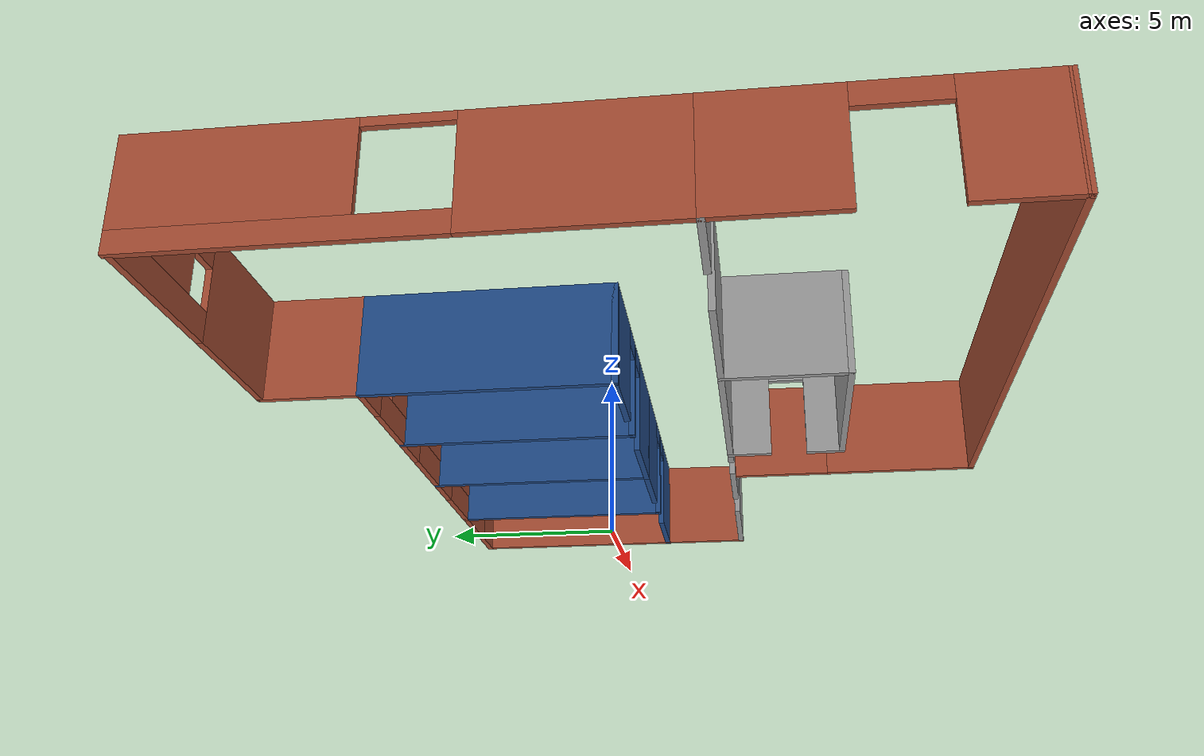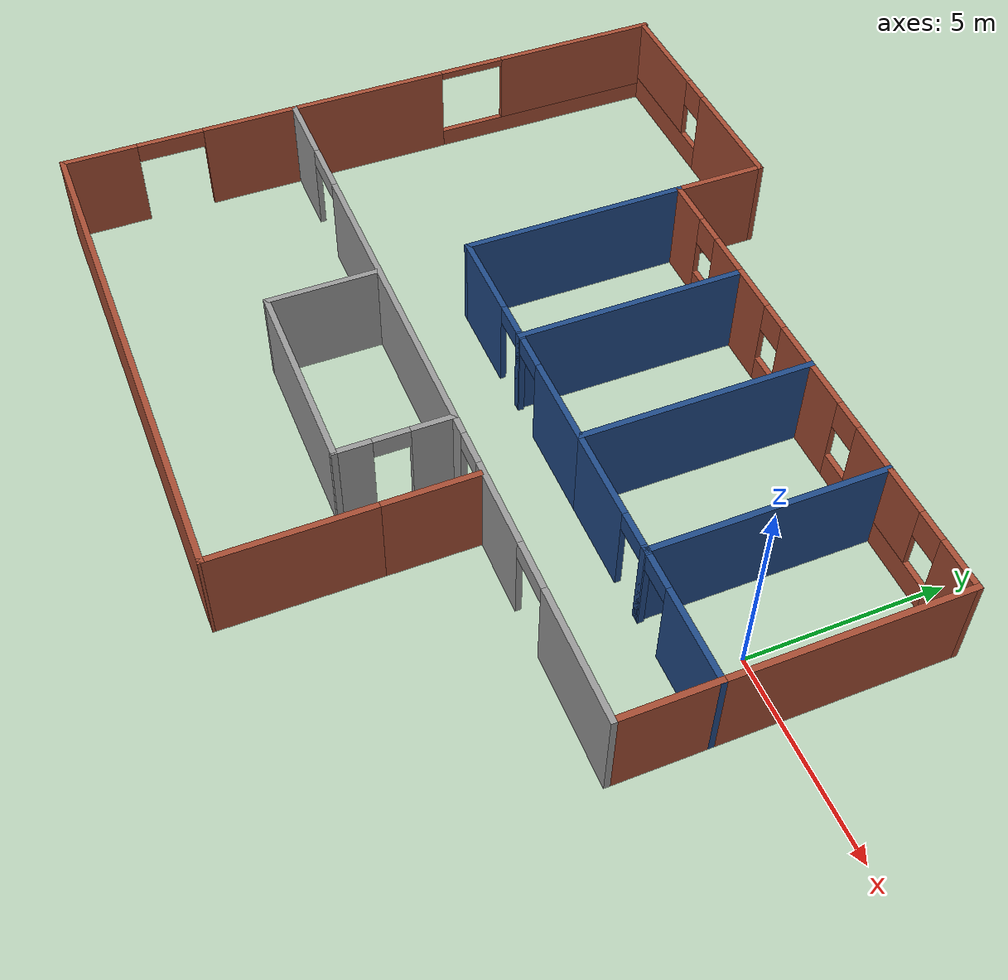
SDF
<?xml version='1.0'?>
<sdf version='1.6'>
  <model name='Building'>
    <pose>-8.62513 -1.85512 0 0 -0 0</pose>
    <link name='Wall_10'>
      <pose>8.50013 0.225124 0 0 -0 0</pose>
      <visual name='Wall_10_Visual_0'>
        <pose>-1.64755 0 1.25 0 -0 0</pose>
        <geometry>
          <box>
            <size>0.204911 0.15 2.5</size>
          </box>
        </geometry>
        <material>
          <script>
            <uri>file://media/materials/scripts/gazebo.material</uri>
            <name>Gazebo/Grey</name>
          </script>
          <ambient>0.12549 0.290196 0.529412 1</ambient>
        </material>
        <meta>
          <layer>0</layer>
        </meta>
      </visual>
      <collision name='Wall_10_Collision_0'>
        <geometry>
          <box>
            <size>0.204911 0.15 2.5</size>
          </box>
        </geometry>
        <pose>-1.64755 0 1.25 0 -0 0</pose>
      </collision>
      <visual name='Wall_10_Visual_1'>
        <pose>0.552455 0 1.25 0 -0 0</pose>
        <geometry>
          <box>
            <size>2.39509 0.15 2.5</size>
          </box>
        </geometry>
        <material>
          <script>
            <uri>file://media/materials/scripts/gazebo.material</uri>
            <name>Gazebo/Grey</name>
          </script>
          <ambient>0.12549 0.290196 0.529412 1</ambient>
        </material>
        <meta>
          <layer>0</layer>
        </meta>
      </visual>
      <collision name='Wall_10_Collision_1'>
        <geometry>
          <box>
            <size>2.39509 0.15 2.5</size>
          </box>
        </geometry>
        <pose>0.552455 0 1.25 0 -0 0</pose>
      </collision>
      <visual name='Wall_10_Visual_2'>
        <pose>-1.09509 0 2.25 0 -0 0</pose>
        <geometry>
          <box>
            <size>0.9 0.15 0.5</size>
          </box>
        </geometry>
        <material>
          <script>
            <uri>file://media/materials/scripts/gazebo.material</uri>
            <name>Gazebo/Grey</name>
          </script>
          <ambient>0.12549 0.290196 0.529412 1</ambient>
        </material>
        <meta>
          <layer>0</layer>
        </meta>
      </visual>
      <collision name='Wall_10_Collision_2'>
        <geometry>
          <box>
            <size>0.9 0.15 0.5</size>
          </box>
        </geometry>
        <pose>-1.09509 0 2.25 0 -0 0</pose>
      </collision>
    </link>
    <link name='Wall_12'>
      <pose>5.15013 0.225124 0 0 -0 3.14159</pose>
      <visual name='Wall_12_Visual_0'>
        <pose>-1.64576 0 1.25 0 -0 0</pose>
        <geometry>
          <box>
            <size>0.208483 0.15 2.5</size>
          </box>
        </geometry>
        <material>
          <script>
            <uri>file://media/materials/scripts/gazebo.material</uri>
            <name>Gazebo/Grey</name>
          </script>
          <ambient>0.12549 0.290196 0.529412 1</ambient>
        </material>
        <meta>
          <layer>0</layer>
        </meta>
      </visual>
      <collision name='Wall_12_Collision_0'>
        <geometry>
          <box>
            <size>0.208483 0.15 2.5</size>
          </box>
        </geometry>
        <pose>-1.64576 0 1.25 0 -0 0</pose>
      </collision>
      <visual name='Wall_12_Visual_1'>
        <pose>0.554241 0 1.25 0 -0 0</pose>
        <geometry>
          <box>
            <size>2.39152 0.15 2.5</size>
          </box>
        </geometry>
        <material>
          <script>
            <uri>file://media/materials/scripts/gazebo.material</uri>
            <name>Gazebo/Grey</name>
          </script>
          <ambient>0.12549 0.290196 0.529412 1</ambient>
        </material>
        <meta>
          <layer>0</layer>
        </meta>
      </visual>
      <collision name='Wall_12_Collision_1'>
        <geometry>
          <box>
            <size>2.39152 0.15 2.5</size>
          </box>
        </geometry>
        <pose>0.554241 0 1.25 0 -0 0</pose>
      </collision>
      <visual name='Wall_12_Visual_2'>
        <pose>-1.09152 0 2.25 0 -0 0</pose>
        <geometry>
          <box>
            <size>0.9 0.15 0.5</size>
          </box>
        </geometry>
        <material>
          <script>
            <uri>file://media/materials/scripts/gazebo.material</uri>
            <name>Gazebo/Grey</name>
          </script>
          <ambient>0.12549 0.290196 0.529412 1</ambient>
        </material>
        <meta>
          <layer>0</layer>
        </meta>
      </visual>
      <collision name='Wall_12_Collision_2'>
        <geometry>
          <box>
            <size>0.9 0.15 0.5</size>
          </box>
        </geometry>
        <pose>-1.09152 0 2.25 0 -0 0</pose>
      </collision>
    </link>
    <link name='Wall_13'>
      <collision name='Wall_13_Collision'>
        <geometry>
          <box>
            <size>6 0.15 2.5</size>
          </box>
        </geometry>
        <pose>0 0 1.25 0 -0 0</pose>
      </collision>
      <visual name='Wall_13_Visual'>
        <pose>0 0 1.25 0 -0 0</pose>
        <geometry>
          <box>
            <size>6 0.15 2.5</size>
          </box>
        </geometry>
        <material>
          <script>
            <uri>file://media/materials/scripts/gazebo.material</uri>
            <name>Gazebo/Grey</name>
          </script>
          <ambient>0.12549 0.290196 0.529412 1</ambient>
        </material>
        <meta>
          <layer>0</layer>
        </meta>
      </visual>
      <pose>3.47512 3.15012 0 0 -0 1.5708</pose>
    </link>
    <link name='Wall_14'>
      <pose>5.15013 6.07512 0 0 -0 0</pose>
      <visual name='Wall_14_Visual_0'>
        <pose>-1.06914 0 1.25 0 -0 0</pose>
        <geometry>
          <box>
            <size>1.36172 0.15 2.5</size>
          </box>
        </geometry>
        <material>
          <script>
            <uri>file://media/materials/scripts/gazebo.material</uri>
            <name>Gazebo/Bricks</name>
          </script>
          <ambient>0.333333 0.341176 0.32549 1</ambient>
        </material>
        <meta>
          <layer>0</layer>
        </meta>
      </visual>
      <collision name='Wall_14_Collision_0'>
        <geometry>
          <box>
            <size>1.36172 0.15 2.5</size>
          </box>
        </geometry>
        <pose>-1.06914 0 1.25 0 -0 0</pose>
      </collision>
      <visual name='Wall_14_Visual_1'>
        <pose>0.68086 0 0.35 0 -0 0</pose>
        <geometry>
          <box>
            <size>2.13828 0.15 0.7</size>
          </box>
        </geometry>
        <material>
          <script>
            <uri>file://media/materials/scripts/gazebo.material</uri>
            <name>Gazebo/Bricks</name>
          </script>
          <ambient>0.333333 0.341176 0.32549 1</ambient>
        </material>
        <meta>
          <layer>0</layer>
        </meta>
      </visual>
      <collision name='Wall_14_Collision_1'>
        <geometry>
          <box>
            <size>2.13828 0.15 0.7</size>
          </box>
        </geometry>
        <pose>0.68086 0 0.35 0 -0 0</pose>
      </collision>
      <visual name='Wall_14_Visual_2'>
        <pose>1.08086 0 1.6 0 -0 0</pose>
        <geometry>
          <box>
            <size>1.33828 0.15 1.8</size>
          </box>
        </geometry>
        <material>
          <script>
            <uri>file://media/materials/scripts/gazebo.material</uri>
            <name>Gazebo/Bricks</name>
          </script>
          <ambient>0.333333 0.341176 0.32549 1</ambient>
        </material>
        <meta>
          <layer>0</layer>
        </meta>
      </visual>
      <collision name='Wall_14_Collision_2'>
        <geometry>
          <box>
            <size>1.33828 0.15 1.8</size>
          </box>
        </geometry>
        <pose>1.08086 0 1.6 0 -0 0</pose>
      </collision>
      <visual name='Wall_14_Visual_3'>
        <pose>0.01172 0 2.1 0 -0 0</pose>
        <geometry>
          <box>
            <size>0.8 0.15 0.8</size>
          </box>
        </geometry>
        <material>
          <script>
            <uri>file://media/materials/scripts/gazebo.material</uri>
            <name>Gazebo/Bricks</name>
          </script>
          <ambient>0.333333 0.341176 0.32549 1</ambient>
        </material>
        <meta>
          <layer>0</layer>
        </meta>
      </visual>
      <collision name='Wall_14_Collision_3'>
        <geometry>
          <box>
            <size>0.8 0.15 0.8</size>
          </box>
        </geometry>
        <pose>0.01172 0 2.1 0 -0 0</pose>
      </collision>
    </link>
    <link name='Wall_16'>
      <pose>1.80012 0.225124 0 0 -0 3.14159</pose>
      <visual name='Wall_16_Visual_0'>
        <pose>-0.551484 0 1.25 0 -0 0</pose>
        <geometry>
          <box>
            <size>2.39703 0.15 2.5</size>
          </box>
        </geometry>
        <material>
          <script>
            <uri>file://media/materials/scripts/gazebo.material</uri>
            <name>Gazebo/Grey</name>
          </script>
          <ambient>0.12549 0.290196 0.529412 1</ambient>
        </material>
        <meta>
          <layer>0</layer>
        </meta>
      </visual>
      <collision name='Wall_16_Collision_0'>
        <geometry>
          <box>
            <size>2.39703 0.15 2.5</size>
          </box>
        </geometry>
        <pose>-0.551484 0 1.25 0 -0 0</pose>
      </collision>
      <visual name='Wall_16_Visual_1'>
        <pose>1.64852 0 1.25 0 -0 0</pose>
        <geometry>
          <box>
            <size>0.202968 0.15 2.5</size>
          </box>
        </geometry>
        <material>
          <script>
            <uri>file://media/materials/scripts/gazebo.material</uri>
            <name>Gazebo/Grey</name>
          </script>
          <ambient>0.12549 0.290196 0.529412 1</ambient>
        </material>
        <meta>
          <layer>0</layer>
        </meta>
      </visual>
      <collision name='Wall_16_Collision_1'>
        <geometry>
          <box>
            <size>0.202968 0.15 2.5</size>
          </box>
        </geometry>
        <pose>1.64852 0 1.25 0 -0 0</pose>
      </collision>
      <visual name='Wall_16_Visual_2'>
        <pose>1.09703 0 2.25 0 -0 0</pose>
        <geometry>
          <box>
            <size>0.9 0.15 0.5</size>
          </box>
        </geometry>
        <material>
          <script>
            <uri>file://media/materials/scripts/gazebo.material</uri>
            <name>Gazebo/Grey</name>
          </script>
          <ambient>0.12549 0.290196 0.529412 1</ambient>
        </material>
        <meta>
          <layer>0</layer>
        </meta>
      </visual>
      <collision name='Wall_16_Collision_2'>
        <geometry>
          <box>
            <size>0.9 0.15 0.5</size>
          </box>
        </geometry>
        <pose>1.09703 0 2.25 0 -0 0</pose>
      </collision>
    </link>
    <link name='Wall_17'>
      <collision name='Wall_17_Collision'>
        <geometry>
          <box>
            <size>6 0.15 2.5</size>
          </box>
        </geometry>
        <pose>0 0 1.25 0 -0 0</pose>
      </collision>
      <visual name='Wall_17_Visual'>
        <pose>0 0 1.25 0 -0 0</pose>
        <geometry>
          <box>
            <size>6 0.15 2.5</size>
          </box>
        </geometry>
        <material>
          <script>
            <uri>file://media/materials/scripts/gazebo.material</uri>
            <name>Gazebo/Grey</name>
          </script>
          <ambient>0.12549 0.290196 0.529412 1</ambient>
        </material>
        <meta>
          <layer>0</layer>
        </meta>
      </visual>
      <pose>0.125125 3.15012 0 0 -0 1.5708</pose>
    </link>
    <link name='Wall_18'>
      <pose>1.80012 6.07512 0 0 -0 0</pose>
      <visual name='Wall_18_Visual_0'>
        <pose>-1.07428 0 1.25 0 -0 0</pose>
        <geometry>
          <box>
            <size>1.35145 0.15 2.5</size>
          </box>
        </geometry>
        <material>
          <script>
            <uri>file://media/materials/scripts/gazebo.material</uri>
            <name>Gazebo/Bricks</name>
          </script>
          <ambient>0.333333 0.341176 0.32549 1</ambient>
        </material>
        <meta>
          <layer>0</layer>
        </meta>
      </visual>
      <collision name='Wall_18_Collision_0'>
        <geometry>
          <box>
            <size>1.35145 0.15 2.5</size>
          </box>
        </geometry>
        <pose>-1.07428 0 1.25 0 -0 0</pose>
      </collision>
      <visual name='Wall_18_Visual_1'>
        <pose>0.675722 0 0.35 0 -0 0</pose>
        <geometry>
          <box>
            <size>2.14855 0.15 0.7</size>
          </box>
        </geometry>
        <material>
          <script>
            <uri>file://media/materials/scripts/gazebo.material</uri>
            <name>Gazebo/Bricks</name>
          </script>
          <ambient>0.333333 0.341176 0.32549 1</ambient>
        </material>
        <meta>
          <layer>0</layer>
        </meta>
      </visual>
      <collision name='Wall_18_Collision_1'>
        <geometry>
          <box>
            <size>2.14855 0.15 0.7</size>
          </box>
        </geometry>
        <pose>0.675722 0 0.35 0 -0 0</pose>
      </collision>
      <visual name='Wall_18_Visual_2'>
        <pose>1.07572 0 1.6 0 -0 0</pose>
        <geometry>
          <box>
            <size>1.34855 0.15 1.8</size>
          </box>
        </geometry>
        <material>
          <script>
            <uri>file://media/materials/scripts/gazebo.material</uri>
            <name>Gazebo/Bricks</name>
          </script>
          <ambient>0.333333 0.341176 0.32549 1</ambient>
        </material>
        <meta>
          <layer>0</layer>
        </meta>
      </visual>
      <collision name='Wall_18_Collision_2'>
        <geometry>
          <box>
            <size>1.34855 0.15 1.8</size>
          </box>
        </geometry>
        <pose>1.07572 0 1.6 0 -0 0</pose>
      </collision>
      <visual name='Wall_18_Visual_3'>
        <pose>0.001445 0 2.1 0 -0 0</pose>
        <geometry>
          <box>
            <size>0.8 0.15 0.8</size>
          </box>
        </geometry>
        <material>
          <script>
            <uri>file://media/materials/scripts/gazebo.material</uri>
            <name>Gazebo/Bricks</name>
          </script>
          <ambient>0.333333 0.341176 0.32549 1</ambient>
        </material>
        <meta>
          <layer>0</layer>
        </meta>
      </visual>
      <collision name='Wall_18_Collision_3'>
        <geometry>
          <box>
            <size>0.8 0.15 0.8</size>
          </box>
        </geometry>
        <pose>0.001445 0 2.1 0 -0 0</pose>
      </collision>
    </link>
    <link name='Wall_20'>
      <pose>-1.54987 0.225124 0 0 -0 3.14159</pose>
      <visual name='Wall_20_Visual_0'>
        <pose>-1.64976 0 1.25 0 -0 0</pose>
        <geometry>
          <box>
            <size>0.200481 0.15 2.5</size>
          </box>
        </geometry>
        <material>
          <script>
            <uri>file://media/materials/scripts/gazebo.material</uri>
            <name>Gazebo/Grey</name>
          </script>
          <ambient>0.12549 0.290196 0.529412 1</ambient>
        </material>
        <meta>
          <layer>0</layer>
        </meta>
      </visual>
      <collision name='Wall_20_Collision_0'>
        <geometry>
          <box>
            <size>0.200481 0.15 2.5</size>
          </box>
        </geometry>
        <pose>-1.64976 0 1.25 0 -0 0</pose>
      </collision>
      <visual name='Wall_20_Visual_1'>
        <pose>0.550241 0 1.25 0 -0 0</pose>
        <geometry>
          <box>
            <size>2.39952 0.15 2.5</size>
          </box>
        </geometry>
        <material>
          <script>
            <uri>file://media/materials/scripts/gazebo.material</uri>
            <name>Gazebo/Grey</name>
          </script>
          <ambient>0.12549 0.290196 0.529412 1</ambient>
        </material>
        <meta>
          <layer>0</layer>
        </meta>
      </visual>
      <collision name='Wall_20_Collision_1'>
        <geometry>
          <box>
            <size>2.39952 0.15 2.5</size>
          </box>
        </geometry>
        <pose>0.550241 0 1.25 0 -0 0</pose>
      </collision>
      <visual name='Wall_20_Visual_2'>
        <pose>-1.09952 0 2.25 0 -0 0</pose>
        <geometry>
          <box>
            <size>0.9 0.15 0.5</size>
          </box>
        </geometry>
        <material>
          <script>
            <uri>file://media/materials/scripts/gazebo.material</uri>
            <name>Gazebo/Grey</name>
          </script>
          <ambient>0.12549 0.290196 0.529412 1</ambient>
        </material>
        <meta>
          <layer>0</layer>
        </meta>
      </visual>
      <collision name='Wall_20_Collision_2'>
        <geometry>
          <box>
            <size>0.9 0.15 0.5</size>
          </box>
        </geometry>
        <pose>-1.09952 0 2.25 0 -0 0</pose>
      </collision>
    </link>
    <link name='Wall_21'>
      <collision name='Wall_21_Collision'>
        <geometry>
          <box>
            <size>6 0.15 2.5</size>
          </box>
        </geometry>
        <pose>0 0 1.25 0 -0 0</pose>
      </collision>
      <visual name='Wall_21_Visual'>
        <pose>0 0 1.25 0 -0 0</pose>
        <geometry>
          <box>
            <size>6 0.15 2.5</size>
          </box>
        </geometry>
        <material>
          <script>
            <uri>file://media/materials/scripts/gazebo.material</uri>
            <name>Gazebo/Grey</name>
          </script>
          <ambient>0.12549 0.290196 0.529412 1</ambient>
        </material>
        <meta>
          <layer>0</layer>
        </meta>
      </visual>
      <pose>-3.22488 3.15012 0 0 -0 1.5708</pose>
    </link>
    <link name='Wall_22'>
      <pose>-1.54987 6.07512 0 0 -0 0</pose>
      <visual name='Wall_22_Visual_0'>
        <pose>-1.07723 0 1.25 0 -0 0</pose>
        <geometry>
          <box>
            <size>1.34554 0.15 2.5</size>
          </box>
        </geometry>
        <material>
          <script>
            <uri>file://media/materials/scripts/gazebo.material</uri>
            <name>Gazebo/Bricks</name>
          </script>
          <ambient>0.333333 0.341176 0.32549 1</ambient>
        </material>
        <meta>
          <layer>0</layer>
        </meta>
      </visual>
      <collision name='Wall_22_Collision_0'>
        <geometry>
          <box>
            <size>1.34554 0.15 2.5</size>
          </box>
        </geometry>
        <pose>-1.07723 0 1.25 0 -0 0</pose>
      </collision>
      <visual name='Wall_22_Visual_1'>
        <pose>0.672768 0 0.35 0 -0 0</pose>
        <geometry>
          <box>
            <size>2.15446 0.15 0.7</size>
          </box>
        </geometry>
        <material>
          <script>
            <uri>file://media/materials/scripts/gazebo.material</uri>
            <name>Gazebo/Bricks</name>
          </script>
          <ambient>0.333333 0.341176 0.32549 1</ambient>
        </material>
        <meta>
          <layer>0</layer>
        </meta>
      </visual>
      <collision name='Wall_22_Collision_1'>
        <geometry>
          <box>
            <size>2.15446 0.15 0.7</size>
          </box>
        </geometry>
        <pose>0.672768 0 0.35 0 -0 0</pose>
      </collision>
      <visual name='Wall_22_Visual_2'>
        <pose>1.07277 0 1.6 0 -0 0</pose>
        <geometry>
          <box>
            <size>1.35446 0.15 1.8</size>
          </box>
        </geometry>
        <material>
          <script>
            <uri>file://media/materials/scripts/gazebo.material</uri>
            <name>Gazebo/Bricks</name>
          </script>
          <ambient>0.333333 0.341176 0.32549 1</ambient>
        </material>
        <meta>
          <layer>0</layer>
        </meta>
      </visual>
      <collision name='Wall_22_Collision_2'>
        <geometry>
          <box>
            <size>1.35446 0.15 1.8</size>
          </box>
        </geometry>
        <pose>1.07277 0 1.6 0 -0 0</pose>
      </collision>
      <visual name='Wall_22_Visual_3'>
        <pose>-0.004464 0 2.1 0 -0 0</pose>
        <geometry>
          <box>
            <size>0.8 0.15 0.8</size>
          </box>
        </geometry>
        <material>
          <script>
            <uri>file://media/materials/scripts/gazebo.material</uri>
            <name>Gazebo/Bricks</name>
          </script>
          <ambient>0.333333 0.341176 0.32549 1</ambient>
        </material>
        <meta>
          <layer>0</layer>
        </meta>
      </visual>
      <collision name='Wall_22_Collision_3'>
        <geometry>
          <box>
            <size>0.8 0.15 0.8</size>
          </box>
        </geometry>
        <pose>-0.004464 0 2.1 0 -0 0</pose>
      </collision>
    </link>
    <link name='Wall_24'>
      <collision name='Wall_24_Collision'>
        <geometry>
          <box>
            <size>2.5 0.15 2.5</size>
          </box>
        </geometry>
        <pose>0 0 1.25 0 -0 0</pose>
      </collision>
      <visual name='Wall_24_Visual'>
        <pose>0 0 1.25 0 -0 0</pose>
        <geometry>
          <box>
            <size>2.5 0.15 2.5</size>
          </box>
        </geometry>
        <material>
          <script>
            <uri>file://media/materials/scripts/gazebo.material</uri>
            <name>Gazebo/Bricks</name>
          </script>
          <ambient>1 1 1 1</ambient>
        </material>
        <meta>
          <layer>0</layer>
        </meta>
      </visual>
      <pose>-3.22488 7.25012 0 0 -0 1.5708</pose>
    </link>
    <link name='Wall_25'>
      <pose>-6.64987 8.42512 0 0 -0 3.14159</pose>
      <visual name='Wall_25_Visual_0'>
        <pose>-1.84714 0 1.25 0 -0 0</pose>
        <geometry>
          <box>
            <size>3.30572 0.15 2.5</size>
          </box>
        </geometry>
        <material>
          <script>
            <uri>file://media/materials/scripts/gazebo.material</uri>
            <name>Gazebo/Bricks</name>
          </script>
          <ambient>0.333333 0.341176 0.32549 1</ambient>
        </material>
        <meta>
          <layer>0</layer>
        </meta>
      </visual>
      <collision name='Wall_25_Collision_0'>
        <geometry>
          <box>
            <size>3.30572 0.15 2.5</size>
          </box>
        </geometry>
        <pose>-1.84714 0 1.25 0 -0 0</pose>
      </collision>
      <visual name='Wall_25_Visual_1'>
        <pose>1.65286 0 0.35 0 -0 0</pose>
        <geometry>
          <box>
            <size>3.69428 0.15 0.7</size>
          </box>
        </geometry>
        <material>
          <script>
            <uri>file://media/materials/scripts/gazebo.material</uri>
            <name>Gazebo/Bricks</name>
          </script>
          <ambient>0.333333 0.341176 0.32549 1</ambient>
        </material>
        <meta>
          <layer>0</layer>
        </meta>
      </visual>
      <collision name='Wall_25_Collision_1'>
        <geometry>
          <box>
            <size>3.69428 0.15 0.7</size>
          </box>
        </geometry>
        <pose>1.65286 0 0.35 0 -0 0</pose>
      </collision>
      <visual name='Wall_25_Visual_2'>
        <pose>2.05286 0 1.6 0 -0 0</pose>
        <geometry>
          <box>
            <size>2.89428 0.15 1.8</size>
          </box>
        </geometry>
        <material>
          <script>
            <uri>file://media/materials/scripts/gazebo.material</uri>
            <name>Gazebo/Bricks</name>
          </script>
          <ambient>0.333333 0.341176 0.32549 1</ambient>
        </material>
        <meta>
          <layer>0</layer>
        </meta>
      </visual>
      <collision name='Wall_25_Collision_2'>
        <geometry>
          <box>
            <size>2.89428 0.15 1.8</size>
          </box>
        </geometry>
        <pose>2.05286 0 1.6 0 -0 0</pose>
      </collision>
      <visual name='Wall_25_Visual_3'>
        <pose>0.205716 0 2.1 0 -0 0</pose>
        <geometry>
          <box>
            <size>0.8 0.15 0.8</size>
          </box>
        </geometry>
        <material>
          <script>
            <uri>file://media/materials/scripts/gazebo.material</uri>
            <name>Gazebo/Bricks</name>
          </script>
          <ambient>0.333333 0.341176 0.32549 1</ambient>
        </material>
        <meta>
          <layer>0</layer>
        </meta>
      </visual>
      <collision name='Wall_25_Collision_3'>
        <geometry>
          <box>
            <size>0.8 0.15 0.8</size>
          </box>
        </geometry>
        <pose>0.205716 0 2.1 0 -0 0</pose>
      </collision>
    </link>
    <link name='Wall_40'>
      <pose>0.000125 -2.12488 0 0 -0 3.14159</pose>
      <visual name='Wall_40_Visual_0'>
        <pose>-8.57984 0 1.25 0 -0 0</pose>
        <geometry>
          <box>
            <size>3.34032 0.15 2.5</size>
          </box>
        </geometry>
        <material>
          <script>
            <uri>file://media/materials/scripts/gazebo.material</uri>
            <name>Gazebo/Grey</name>
          </script>
          <ambient>0.533333 0.541176 0.521569 1</ambient>
        </material>
        <meta>
          <layer>0</layer>
        </meta>
      </visual>
      <collision name='Wall_40_Collision_0'>
        <geometry>
          <box>
            <size>3.34032 0.15 2.5</size>
          </box>
        </geometry>
        <pose>-8.57984 0 1.25 0 -0 0</pose>
      </collision>
      <visual name='Wall_40_Visual_1'>
        <pose>-4.49832 0 1.25 0 -0 0</pose>
        <geometry>
          <box>
            <size>2.32272 0.15 2.5</size>
          </box>
        </geometry>
        <material>
          <script>
            <uri>file://media/materials/scripts/gazebo.material</uri>
            <name>Gazebo/Grey</name>
          </script>
          <ambient>0.533333 0.541176 0.521569 1</ambient>
        </material>
        <meta>
          <layer>0</layer>
        </meta>
      </visual>
      <collision name='Wall_40_Collision_1'>
        <geometry>
          <box>
            <size>2.32272 0.15 2.5</size>
          </box>
        </geometry>
        <pose>-4.49832 0 1.25 0 -0 0</pose>
      </collision>
      <visual name='Wall_40_Visual_2'>
        <pose>2.13723 0 1.25 0 -0 0</pose>
        <geometry>
          <box>
            <size>9.14837 0.15 2.5</size>
          </box>
        </geometry>
        <material>
          <script>
            <uri>file://media/materials/scripts/gazebo.material</uri>
            <name>Gazebo/Grey</name>
          </script>
          <ambient>0.533333 0.541176 0.521569 1</ambient>
        </material>
        <meta>
          <layer>0</layer>
        </meta>
      </visual>
      <collision name='Wall_40_Collision_2'>
        <geometry>
          <box>
            <size>9.14837 0.15 2.5</size>
          </box>
        </geometry>
        <pose>2.13723 0 1.25 0 -0 0</pose>
      </collision>
      <visual name='Wall_40_Visual_3'>
        <pose>9.23071 0 1.25 0 -0 0</pose>
        <geometry>
          <box>
            <size>2.03859 0.15 2.5</size>
          </box>
        </geometry>
        <material>
          <script>
            <uri>file://media/materials/scripts/gazebo.material</uri>
            <name>Gazebo/Grey</name>
          </script>
          <ambient>0.533333 0.541176 0.521569 1</ambient>
        </material>
        <meta>
          <layer>0</layer>
        </meta>
      </visual>
      <collision name='Wall_40_Collision_3'>
        <geometry>
          <box>
            <size>2.03859 0.15 2.5</size>
          </box>
        </geometry>
        <pose>9.23071 0 1.25 0 -0 0</pose>
      </collision>
      <visual name='Wall_40_Visual_4'>
        <pose>-6.28468 0 2.25 0 -0 0</pose>
        <geometry>
          <box>
            <size>1.25 0.15 0.5</size>
          </box>
        </geometry>
        <material>
          <script>
            <uri>file://media/materials/scripts/gazebo.material</uri>
            <name>Gazebo/Grey</name>
          </script>
          <ambient>0.533333 0.541176 0.521569 1</ambient>
        </material>
        <meta>
          <layer>0</layer>
        </meta>
      </visual>
      <collision name='Wall_40_Collision_4'>
        <geometry>
          <box>
            <size>1.25 0.15 0.5</size>
          </box>
        </geometry>
        <pose>-6.28468 0 2.25 0 -0 0</pose>
      </collision>
      <visual name='Wall_40_Visual_5'>
        <pose>-2.88696 0 2.25 0 -0 0</pose>
        <geometry>
          <box>
            <size>0.9 0.15 0.5</size>
          </box>
        </geometry>
        <material>
          <script>
            <uri>file://media/materials/scripts/gazebo.material</uri>
            <name>Gazebo/Grey</name>
          </script>
          <ambient>0.533333 0.541176 0.521569 1</ambient>
        </material>
        <meta>
          <layer>0</layer>
        </meta>
      </visual>
      <collision name='Wall_40_Collision_5'>
        <geometry>
          <box>
            <size>0.9 0.15 0.5</size>
          </box>
        </geometry>
        <pose>-2.88696 0 2.25 0 -0 0</pose>
      </collision>
      <visual name='Wall_40_Visual_6'>
        <pose>7.46141 0 2.25 0 -0 0</pose>
        <geometry>
          <box>
            <size>1.5 0.15 0.5</size>
          </box>
        </geometry>
        <material>
          <script>
            <uri>file://media/materials/scripts/gazebo.material</uri>
            <name>Gazebo/Grey</name>
          </script>
          <ambient>0.533333 0.541176 0.521569 1</ambient>
        </material>
        <meta>
          <layer>0</layer>
        </meta>
      </visual>
      <collision name='Wall_40_Collision_6'>
        <geometry>
          <box>
            <size>1.5 0.15 0.5</size>
          </box>
        </geometry>
        <pose>7.46141 0 2.25 0 -0 0</pose>
      </collision>
    </link>
    <link name='Wall_41'>
      <pose>-10.1749 3.17512 0 0 -0 1.5708</pose>
      <visual name='Wall_41_Visual_0'>
        <pose>-3.19655 0 1.25 0 -0 0</pose>
        <geometry>
          <box>
            <size>4.3569 0.15 2.5</size>
          </box>
        </geometry>
        <material>
          <script>
            <uri>file://media/materials/scripts/gazebo.material</uri>
            <name>Gazebo/Bricks</name>
          </script>
          <ambient>0.333333 0.341176 0.32549 1</ambient>
        </material>
        <meta>
          <layer>0</layer>
        </meta>
      </visual>
      <collision name='Wall_41_Collision_0'>
        <geometry>
          <box>
            <size>4.3569 0.15 2.5</size>
          </box>
        </geometry>
        <pose>-3.19655 0 1.25 0 -0 0</pose>
      </collision>
      <visual name='Wall_41_Visual_1'>
        <pose>2.17845 0 0.25 0 -0 0</pose>
        <geometry>
          <box>
            <size>6.3931 0.15 0.5</size>
          </box>
        </geometry>
        <material>
          <script>
            <uri>file://media/materials/scripts/gazebo.material</uri>
            <name>Gazebo/Bricks</name>
          </script>
          <ambient>0.333333 0.341176 0.32549 1</ambient>
        </material>
        <meta>
          <layer>0</layer>
        </meta>
      </visual>
      <collision name='Wall_41_Collision_1'>
        <geometry>
          <box>
            <size>6.3931 0.15 0.5</size>
          </box>
        </geometry>
        <pose>2.17845 0 0.25 0 -0 0</pose>
      </collision>
      <visual name='Wall_41_Visual_2'>
        <pose>3.07845 0 1.5 0 -0 0</pose>
        <geometry>
          <box>
            <size>4.5931 0.15 2</size>
          </box>
        </geometry>
        <material>
          <script>
            <uri>file://media/materials/scripts/gazebo.material</uri>
            <name>Gazebo/Bricks</name>
          </script>
          <ambient>0.333333 0.341176 0.32549 1</ambient>
        </material>
        <meta>
          <layer>0</layer>
        </meta>
      </visual>
      <collision name='Wall_41_Collision_2'>
        <geometry>
          <box>
            <size>4.5931 0.15 2</size>
          </box>
        </geometry>
        <pose>3.07845 0 1.5 0 -0 0</pose>
      </collision>
      <visual name='Wall_41_Visual_3'>
        <pose>-0.118096 0 2.4 0 -0 0</pose>
        <geometry>
          <box>
            <size>1.8 0.15 0.2</size>
          </box>
        </geometry>
        <material>
          <script>
            <uri>file://media/materials/scripts/gazebo.material</uri>
            <name>Gazebo/Bricks</name>
          </script>
          <ambient>0.333333 0.341176 0.32549 1</ambient>
        </material>
        <meta>
          <layer>0</layer>
        </meta>
      </visual>
      <collision name='Wall_41_Collision_3'>
        <geometry>
          <box>
            <size>1.8 0.15 0.2</size>
          </box>
        </geometry>
        <pose>-0.118096 0 2.4 0 -0 0</pose>
      </collision>
    </link>
    <link name='Wall_43'>
      <collision name='Wall_43_Collision'>
        <geometry>
          <box>
            <size>2.5 0.15 2.5</size>
          </box>
        </geometry>
        <pose>0 0 1.25 0 -0 0</pose>
      </collision>
      <visual name='Wall_43_Visual'>
        <pose>0 0 1.25 0 -0 0</pose>
        <geometry>
          <box>
            <size>2.5 0.15 2.5</size>
          </box>
        </geometry>
        <material>
          <script>
            <uri>file://media/materials/scripts/gazebo.material</uri>
            <name>Gazebo/Bricks</name>
          </script>
          <ambient>1 1 1 1</ambient>
        </material>
        <meta>
          <layer>0</layer>
        </meta>
      </visual>
      <pose>3.6418 -3.40395 0 0 -0 -1.5708</pose>
    </link>
    <link name='Wall_44'>
      <collision name='Wall_44_Collision'>
        <geometry>
          <box>
            <size>4 0.15 2.5</size>
          </box>
        </geometry>
        <pose>0 0 1.25 0 -0 0</pose>
      </collision>
      <visual name='Wall_44_Visual'>
        <pose>0 0 1.25 0 -0 0</pose>
        <geometry>
          <box>
            <size>4 0.15 2.5</size>
          </box>
        </geometry>
        <material>
          <script>
            <uri>file://media/materials/scripts/gazebo.material</uri>
            <name>Gazebo/Bricks</name>
          </script>
          <ambient>1 1 1 1</ambient>
        </material>
        <meta>
          <layer>0</layer>
        </meta>
      </visual>
      <pose>3.6418 -6.50395 0 0 -0 -1.5708</pose>
    </link>
    <link name='Wall_46'>
      <pose>1.89213 -3.55088 0 0 -0 -1.5708</pose>
      <visual name='Wall_46_Visual_0'>
        <pose>-0.932706 0 1.25 0 -0 0</pose>
        <geometry>
          <box>
            <size>1.13459 0.15 2.5</size>
          </box>
        </geometry>
        <material>
          <script>
            <uri>file://media/materials/scripts/gazebo.material</uri>
            <name>Gazebo/Grey</name>
          </script>
          <ambient>0.533333 0.541176 0.521569 1</ambient>
        </material>
        <meta>
          <layer>0</layer>
        </meta>
      </visual>
      <collision name='Wall_46_Collision_0'>
        <geometry>
          <box>
            <size>1.13459 0.15 2.5</size>
          </box>
        </geometry>
        <pose>-0.932706 0 1.25 0 -0 0</pose>
      </collision>
      <visual name='Wall_46_Visual_1'>
        <pose>1.01729 0 1.25 0 -0 0</pose>
        <geometry>
          <box>
            <size>0.965411 0.15 2.5</size>
          </box>
        </geometry>
        <material>
          <script>
            <uri>file://media/materials/scripts/gazebo.material</uri>
            <name>Gazebo/Grey</name>
          </script>
          <ambient>0.533333 0.541176 0.521569 1</ambient>
        </material>
        <meta>
          <layer>0</layer>
        </meta>
      </visual>
      <collision name='Wall_46_Collision_1'>
        <geometry>
          <box>
            <size>0.965411 0.15 2.5</size>
          </box>
        </geometry>
        <pose>1.01729 0 1.25 0 -0 0</pose>
      </collision>
      <visual name='Wall_46_Visual_2'>
        <pose>0.084589 0 2.25 0 -0 0</pose>
        <geometry>
          <box>
            <size>0.9 0.15 0.5</size>
          </box>
        </geometry>
        <material>
          <script>
            <uri>file://media/materials/scripts/gazebo.material</uri>
            <name>Gazebo/Grey</name>
          </script>
          <ambient>0.533333 0.541176 0.521569 1</ambient>
        </material>
        <meta>
          <layer>0</layer>
        </meta>
      </visual>
      <collision name='Wall_46_Collision_2'>
        <geometry>
          <box>
            <size>0.9 0.15 0.5</size>
          </box>
        </geometry>
        <pose>0.084589 0 2.25 0 -0 0</pose>
      </collision>
    </link>
    <link name='Wall_47'>
      <collision name='Wall_47_Collision'>
        <geometry>
          <box>
            <size>5.25 0.15 2.5</size>
          </box>
        </geometry>
        <pose>0 0 1.25 0 -0 0</pose>
      </collision>
      <visual name='Wall_47_Visual'>
        <pose>0 0 1.25 0 -0 0</pose>
        <geometry>
          <box>
            <size>5.25 0.15 2.5</size>
          </box>
        </geometry>
        <material>
          <script>
            <uri>file://media/materials/scripts/gazebo.material</uri>
            <name>Gazebo/Grey</name>
          </script>
          <ambient>0.533333 0.541176 0.521569 1</ambient>
        </material>
        <meta>
          <layer>0</layer>
        </meta>
      </visual>
      <pose>-0.657821 -4.97595 0 0 -0 -3.14156</pose>
    </link>
    <link name='Wall_48'>
      <collision name='Wall_48_Collision'>
        <geometry>
          <box>
            <size>3 0.15 2.5</size>
          </box>
        </geometry>
        <pose>0 0 1.25 0 -0 0</pose>
      </collision>
      <visual name='Wall_48_Visual'>
        <pose>0 0 1.25 0 -0 0</pose>
        <geometry>
          <box>
            <size>3 0.15 2.5</size>
          </box>
        </geometry>
        <material>
          <script>
            <uri>file://media/materials/scripts/gazebo.material</uri>
            <name>Gazebo/Grey</name>
          </script>
          <ambient>0.533333 0.541176 0.521569 1</ambient>
        </material>
        <meta>
          <layer>0</layer>
        </meta>
      </visual>
      <pose>-3.20777 -3.55104 0 0 -0 1.5708</pose>
    </link>
    <link name='Wall_5'>
      <collision name='Wall_5_Collision'>
        <geometry>
          <box>
            <size>2.5 0.15 2.5</size>
          </box>
        </geometry>
        <pose>0 0 1.25 0 -0 0</pose>
      </collision>
      <visual name='Wall_5_Visual'>
        <pose>0 0 1.25 0 -0 0</pose>
        <geometry>
          <box>
            <size>2.5 0.15 2.5</size>
          </box>
        </geometry>
        <material>
          <script>
            <uri>file://media/materials/scripts/gazebo.material</uri>
            <name>Gazebo/Bricks</name>
          </script>
          <ambient>0.333333 0.341176 0.32549 1</ambient>
        </material>
        <meta>
          <layer>0</layer>
        </meta>
      </visual>
      <pose>10.1751 -0.949876 0 0 -0 1.5708</pose>
    </link>
    <link name='Wall_52'>
      <pose>-10.1749 -5.29988 0 0 -0 -1.5708</pose>
      <visual name='Wall_52_Visual_0'>
        <pose>-1.92266 0 1.25 0 -0 0</pose>
        <geometry>
          <box>
            <size>2.65469 0.15 2.5</size>
          </box>
        </geometry>
        <material>
          <script>
            <uri>file://media/materials/scripts/gazebo.material</uri>
            <name>Gazebo/Bricks</name>
          </script>
          <ambient>1 1 1 1</ambient>
        </material>
        <meta>
          <layer>0</layer>
        </meta>
      </visual>
      <collision name='Wall_52_Collision_0'>
        <geometry>
          <box>
            <size>2.65469 0.15 2.5</size>
          </box>
        </geometry>
        <pose>-1.92266 0 1.25 0 -0 0</pose>
      </collision>
      <visual name='Wall_52_Visual_1'>
        <pose>2.22734 0 1.25 0 -0 0</pose>
        <geometry>
          <box>
            <size>2.04531 0.15 2.5</size>
          </box>
        </geometry>
        <material>
          <script>
            <uri>file://media/materials/scripts/gazebo.material</uri>
            <name>Gazebo/Bricks</name>
          </script>
          <ambient>1 1 1 1</ambient>
        </material>
        <meta>
          <layer>0</layer>
        </meta>
      </visual>
      <collision name='Wall_52_Collision_1'>
        <geometry>
          <box>
            <size>2.04531 0.15 2.5</size>
          </box>
        </geometry>
        <pose>2.22734 0 1.25 0 -0 0</pose>
      </collision>
      <visual name='Wall_52_Visual_2'>
        <pose>0.304685 0 2.25 0 -0 0</pose>
        <geometry>
          <box>
            <size>1.8 0.15 0.5</size>
          </box>
        </geometry>
        <material>
          <script>
            <uri>file://media/materials/scripts/gazebo.material</uri>
            <name>Gazebo/Bricks</name>
          </script>
          <ambient>1 1 1 1</ambient>
        </material>
        <meta>
          <layer>0</layer>
        </meta>
      </visual>
      <collision name='Wall_52_Collision_2'>
        <geometry>
          <box>
            <size>1.8 0.15 0.5</size>
          </box>
        </geometry>
        <pose>0.304685 0 2.25 0 -0 0</pose>
      </collision>
    </link>
    <link name='Wall_54'>
      <collision name='Wall_54_Collision'>
        <geometry>
          <box>
            <size>13.9667 0.15 2.5</size>
          </box>
        </geometry>
        <pose>0 0 1.25 0 -0 0</pose>
      </collision>
      <visual name='Wall_54_Visual'>
        <pose>0 0 1.25 0 -0 0</pose>
        <geometry>
          <box>
            <size>13.9667 0.15 2.5</size>
          </box>
        </geometry>
        <material>
          <script>
            <uri>file://media/materials/scripts/gazebo.material</uri>
            <name>Gazebo/Bricks</name>
          </script>
          <ambient>1 1 1 1</ambient>
        </material>
        <meta>
          <layer>0</layer>
        </meta>
      </visual>
      <pose>-3.26654 -8.45191 0 0 -0 -3.13827</pose>
    </link>
    <link name='Wall_6'>
      <collision name='Wall_6_Collision'>
        <geometry>
          <box>
            <size>6 0.15 2.5</size>
          </box>
        </geometry>
        <pose>0 0 1.25 0 -0 0</pose>
      </collision>
      <visual name='Wall_6_Visual'>
        <pose>0 0 1.25 0 -0 0</pose>
        <geometry>
          <box>
            <size>6 0.15 2.5</size>
          </box>
        </geometry>
        <material>
          <script>
            <uri>file://media/materials/scripts/gazebo.material</uri>
            <name>Gazebo/Bricks</name>
          </script>
          <ambient>0.333333 0.341176 0.32549 1</ambient>
        </material>
        <meta>
          <layer>0</layer>
        </meta>
      </visual>
      <pose>10.1751 3.15012 0 0 -0 1.5708</pose>
    </link>
    <link name='Wall_8'>
      <pose>8.50013 6.07512 0 0 -0 3.14159</pose>
      <visual name='Wall_8_Visual_0'>
        <pose>-1.07616 0 1.25 0 -0 0</pose>
        <geometry>
          <box>
            <size>1.34768 0.15 2.5</size>
          </box>
        </geometry>
        <material>
          <script>
            <uri>file://media/materials/scripts/gazebo.material</uri>
            <name>Gazebo/Bricks</name>
          </script>
          <ambient>0.333333 0.341176 0.32549 1</ambient>
        </material>
        <meta>
          <layer>0</layer>
        </meta>
      </visual>
      <collision name='Wall_8_Collision_0'>
        <geometry>
          <box>
            <size>1.34768 0.15 2.5</size>
          </box>
        </geometry>
        <pose>-1.07616 0 1.25 0 -0 0</pose>
      </collision>
      <visual name='Wall_8_Visual_1'>
        <pose>0.673839 0 0.35 0 -0 0</pose>
        <geometry>
          <box>
            <size>2.15232 0.15 0.7</size>
          </box>
        </geometry>
        <material>
          <script>
            <uri>file://media/materials/scripts/gazebo.material</uri>
            <name>Gazebo/Bricks</name>
          </script>
          <ambient>0.333333 0.341176 0.32549 1</ambient>
        </material>
        <meta>
          <layer>0</layer>
        </meta>
      </visual>
      <collision name='Wall_8_Collision_1'>
        <geometry>
          <box>
            <size>2.15232 0.15 0.7</size>
          </box>
        </geometry>
        <pose>0.673839 0 0.35 0 -0 0</pose>
      </collision>
      <visual name='Wall_8_Visual_2'>
        <pose>1.07384 0 1.6 0 -0 0</pose>
        <geometry>
          <box>
            <size>1.35232 0.15 1.8</size>
          </box>
        </geometry>
        <material>
          <script>
            <uri>file://media/materials/scripts/gazebo.material</uri>
            <name>Gazebo/Bricks</name>
          </script>
          <ambient>0.333333 0.341176 0.32549 1</ambient>
        </material>
        <meta>
          <layer>0</layer>
        </meta>
      </visual>
      <collision name='Wall_8_Collision_2'>
        <geometry>
          <box>
            <size>1.35232 0.15 1.8</size>
          </box>
        </geometry>
        <pose>1.07384 0 1.6 0 -0 0</pose>
      </collision>
      <visual name='Wall_8_Visual_3'>
        <pose>-0.002322 0 2.1 0 -0 0</pose>
        <geometry>
          <box>
            <size>0.8 0.15 0.8</size>
          </box>
        </geometry>
        <material>
          <script>
            <uri>file://media/materials/scripts/gazebo.material</uri>
            <name>Gazebo/Bricks</name>
          </script>
          <ambient>0.333333 0.341176 0.32549 1</ambient>
        </material>
        <meta>
          <layer>0</layer>
        </meta>
      </visual>
      <collision name='Wall_8_Collision_3'>
        <geometry>
          <box>
            <size>0.8 0.15 0.8</size>
          </box>
        </geometry>
        <pose>-0.002322 0 2.1 0 -0 0</pose>
      </collision>
    </link>
    <link name='Wall_9'>
      <collision name='Wall_9_Collision'>
        <geometry>
          <box>
            <size>6 0.15 2.5</size>
          </box>
        </geometry>
        <pose>0 0 1.25 0 -0 0</pose>
      </collision>
      <visual name='Wall_9_Visual'>
        <pose>0 0 1.25 0 -0 0</pose>
        <geometry>
          <box>
            <size>6 0.15 2.5</size>
          </box>
        </geometry>
        <material>
          <script>
            <uri>file://media/materials/scripts/gazebo.material</uri>
            <name>Gazebo/Grey</name>
          </script>
          <ambient>0.12549 0.290196 0.529412 1</ambient>
        </material>
        <meta>
          <layer>0</layer>
        </meta>
      </visual>
      <pose>6.82512 3.15012 0 0 -0 -1.5708</pose>
    </link>
    <static>1</static>
  </model>
</sdf>
